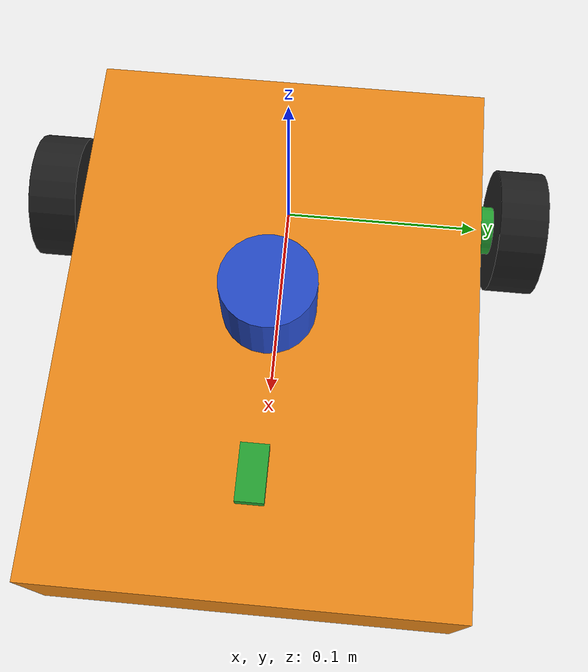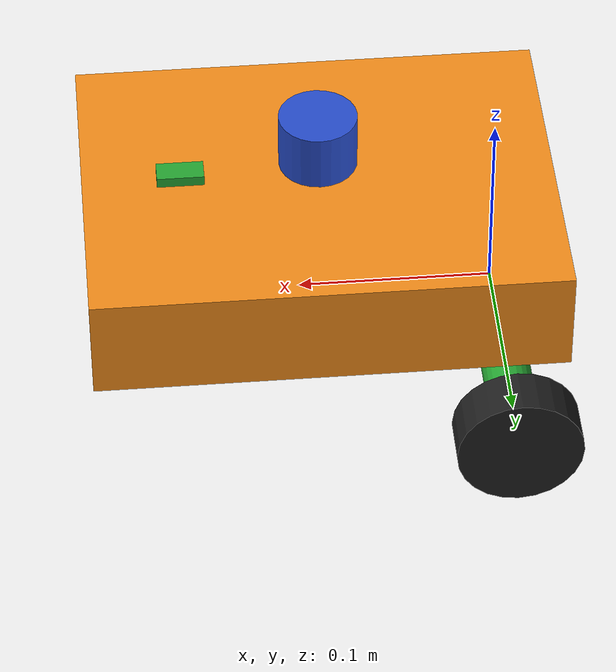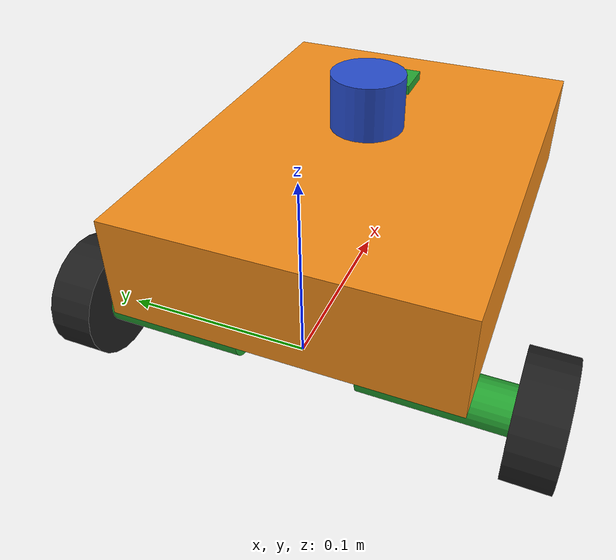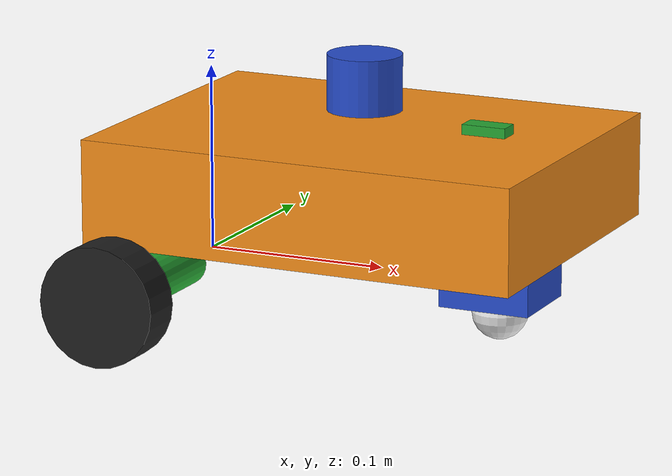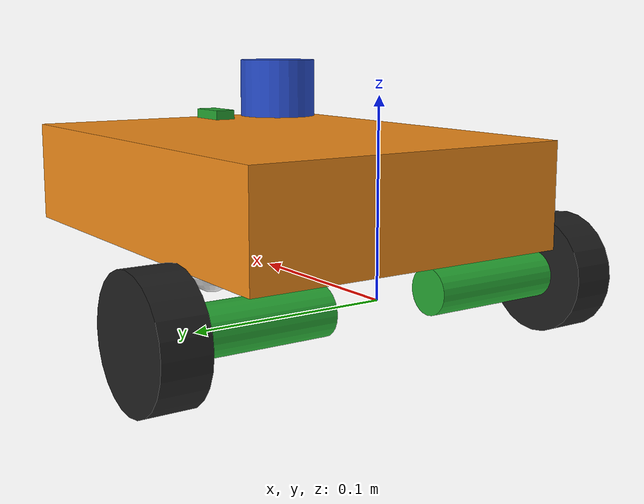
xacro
<?xml version="1.0"?>
<robot xmlns:xacro="http://www.ros.org/wiki/xacro"  name="robot">

    <xacro:include filename="ros2_control.xacro" />
    <xacro:include filename="materials.urdf.xacro" />
    <xacro:include filename="robot_core.urdf.xacro" />
    <xacro:include filename="lidar.urdf.xacro" />
    <xacro:include filename="imu.urdf.xacro" />

</robot>

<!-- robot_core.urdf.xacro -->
<robot xmlns:xacro="http://www.ros.org/wiki/xacro">

  <!-- Constants for robot dimensions -->
  <xacro:property name="PI" value="3.1415926535897931"/>
  <xacro:property name="base_mass" value="0.3" /> <!-- arbitrary value for base mass -->
  <xacro:property name="base_width" value="0.24" />
  <xacro:property name="base_length" value="0.18" />
  <xacro:property name="base_height" value="0.056" />
  <xacro:property name="wheel_mass" value="0.3" /> <!-- arbitrary value for wheel mass -->
  <xacro:property name="wheel_len" value="0.024" />
  <xacro:property name="wheel_radius" value="0.032" />
  <xacro:property name="wheel_distance" value="0.121" />
  <xacro:property name="caster_wheel_mass" value="0.1" /> <!-- arbitrary value for caster wheel mass -->
  <xacro:property name="caster_wheel_radius" value="0.015" />
  <xacro:property name="z_offset" value="-${base_height/2}" /> <!-- Space btw top of beam and the each joint -->

  <!-- base_footprint Link -->
  <link name="base_footprint">

  </link>

  <joint name="base_link_link" type="fixed">
    <parent link="base_footprint"/>
    <child link="base_link"/>
    <origin xyz="0 0 0" rpy="0 0 0"/>
  </joint>

<!-- Base Link -->
  <link name="base_link">
    <collision>
      <origin xyz="0.09 0 0.02" rpy="0 0 0"/>
      <geometry>
        <box size="${base_width} ${base_length} ${base_height}"/>
      </geometry>
    </collision>

    <visual>
      <origin xyz="0.09 0 0.048" rpy="0 0 0"/>
      <geometry>
        <box size="${base_width} ${base_length} ${base_height}"/>
      </geometry>
      <material name="orange"/>
    </visual>
  </link>

  <joint name="left_wheel_joint" type="continuous">
    <parent link="base_link"/>
    <child link="left_wheel"/>
    <origin xyz="0 -0.12 0" rpy="0 0 0"/>
    <axis xyz="0 1 0"/>
    <dynamics damping="0.2"/>
  </joint>

  <!-- left wheel Link -->
  <link name="left_wheel">
    <collision>
      <origin xyz="0 0 0" rpy="${PI/2} 0 0"/>
      <geometry>
        <cylinder length="${wheel_len}" radius="${wheel_radius}"/>
      </geometry>
    </collision>

    <visual>
      <origin xyz="0 0 0" rpy="${PI/2} 0 0"/>
      <geometry>
        <cylinder length="${wheel_len}" radius="${wheel_radius}"/>
      </geometry>
      <material name="black"/>
    </visual>
  </link>

  <joint name="right_wheel_joint" type="continuous">
    <parent link="base_link"/>
    <child link="right_wheel"/>
    <origin xyz="0 0.12 0" rpy="0 0 0"/>
    <axis xyz="0 1 0"/>
    <dynamics damping="0.2"/>
  </joint>

  <!-- right wheel Link -->
  <link name="right_wheel">
    <collision>
      <origin xyz="0 0 0" rpy="${PI/2} 0 0"/>
      <geometry>
        <cylinder length="${wheel_len}" radius="${wheel_radius}"/>
      </geometry>
    </collision>

    <visual>
      <origin xyz="0 0 0" rpy="${PI/2} 0 0"/>
      <geometry>
        <cylinder length="${wheel_len}" radius="${wheel_radius}"/>
      </geometry>
      <material name="black"/>
    </visual>
  </link>

  <joint name="caster_frontal_wheel_joint" type="fixed">
    <parent link="base_link"/>
    <child link="caster_frontal_wheel"/>
    <origin xyz="0.168 0 -0.015" rpy="0 0 0"/>
  </joint>

  <!-- caster frontal wheel Link -->
  <link name="caster_frontal_wheel">
    <collision>
      <origin xyz="0 0 0" rpy="0 0 0"/>
      <geometry>
        <sphere radius="${caster_wheel_radius}"/>
      </geometry>
    </collision>

    <visual>
      <origin xyz="0 0 0" rpy="0 0 0"/>
      <geometry>
        <sphere radius="${caster_wheel_radius}"/>
      </geometry>
      <material name="white"/>
    </visual>
  </link>

  <joint name="hub_joint" type="fixed">
    <parent link="base_link"/>
    <child link="hub"/>
    <origin xyz="0.168 0 0.005" rpy="0 0 0"/>
  </joint>

  <!-- Hub Link -->
  <link name="hub">
    <collision>
      <origin xyz="0 0 0" rpy="0 0 0"/>
      <geometry>
        <box size="0.05 0.046 0.03"/>
      </geometry>
    </collision>

    <visual>
      <origin xyz="0 0 0" rpy="0 0 0"/>
      <geometry>
        <box size="0.05 0.046 0.03"/>
      </geometry>
      <material name="blue"/>
    </visual>
  </link>

  <joint name="left_motor_joint" type="fixed">
    <parent link="base_link"/>
    <child link="left_motor"/>
    <origin xyz="0 -0.0725 0" rpy="0 0 0"/>
    <axis xyz="0 1 0"/>
  </joint>

  <!-- left motor Link -->
  <link name="left_motor">
    <collision>
      <origin xyz="0 0 0" rpy="${PI/2} 0 0"/>
      <geometry>
        <cylinder length="0.08" radius="0.0125"/>
      </geometry>
    </collision>

    <visual>
      <origin xyz="0 0 0" rpy="${PI/2} 0 0"/>
      <geometry>
        <cylinder length="0.08" radius="0.0125"/>
      </geometry>
      <material name="green"/>
    </visual>
  </link>

  <joint name="right_motor_joint" type="fixed">
    <parent link="base_link"/>
    <child link="right_motor"/>
    <origin xyz="0 0.0725 0" rpy="0 0 0"/>
    <axis xyz="0 1 0"/>
  </joint>

  <!-- right motor Link -->
  <link name="right_motor">
    <collision>
      <origin xyz="0 0 0" rpy="${PI/2} 0 0"/>
      <geometry>
        <cylinder length="0.08" radius="0.0125"/>
      </geometry>
    </collision>

    <visual>
      <origin xyz="0 0 0" rpy="${PI/2} 0 0"/>
      <geometry>
        <cylinder length="0.08" radius="0.0125"/>
      </geometry>
      <material name="green"/>
    </visual>
  </link>
</robot>

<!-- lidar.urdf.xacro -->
<robot xmlns:xacro="http://www.ros.org/wiki/xacro" >
    <xacro:property name="PI" value="3.1415926535897931"/>

    <joint name="joint_lidar" type="fixed">
        <parent link="base_link"/>
        <child link="lidar_frame"/>
        <origin xyz="0.09 0 0" rpy="0 0 0"/>
    </joint>

    <link name="lidar_frame">
        <visual>
            <origin xyz="0.0 0 0.1" rpy="0 0 0"/>
            <geometry>
                <cylinder length="0.03" radius="0.02"/>
            </geometry>
            <material name="blue"/>
        </visual>
    </link>

</robot>

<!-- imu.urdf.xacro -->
<robot xmlns:xacro="http://www.ros.org/wiki/xacro" >

    <joint name="imu_joint" type="fixed">
        <parent link="base_link"/>
        <child link="imu_frame"/>
        <origin xyz="0.16 0 0.081425" rpy="0 0 0"/>
    </joint>

    <link name="imu_frame">
        <visual>
            <geometry>
                <box size="0.024 0.012 0.005425"/>
            </geometry>
            <material name="green"/>
        </visual>
    </link>
</robot>
